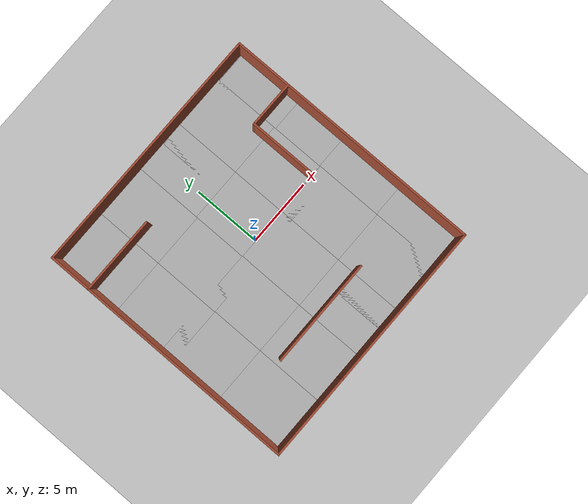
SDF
<sdf version="1.6">
 <world name="default">
  <light name="sun" type="directional">
   <pose>0 0 10 0 -0 0</pose>
   <diffuse>0.8 0.8 0.8 1</diffuse>
   <specular>0.2 0.2 0.2 1</specular>
   <attenuation>
    <range>1000</range>
    <constant>0.9</constant>
    <linear>0.01</linear>
    <quadratic>0.001</quadratic>
   </attenuation>
   <direction>-0.5 0.1 -0.9</direction>
  </light>
  <model name="ground_plane">
   <static>1</static>
   <link name="link">
    <collision name="collision">
     <geometry><plane><normal>0 0 1</normal><size>100 100</size></plane></geometry>
     <surface><friction><ode><mu>100</mu><mu2>50</mu2></ode></friction></surface>
    </collision>
    <visual name="visual">
     <cast_shadows>0</cast_shadows>
     <geometry><plane><normal>0 0 1</normal><size>100 100</size></plane></geometry>
     <material>
      <script><uri>file://media/materials/scripts/gazebo.material</uri><name>Gazebo/Grey</name></script>
     </material>
    </visual>
   </link>
  </model>
  <gravity>0 0 -9.8</gravity>
  <magnetic_field>6e-06 2.3e-05 -4.2e-05</magnetic_field>
  <atmosphere type="adiabatic"/>
  <physics name="default_physics" default="0" type="ode">
   <max_step_size>0.001</max_step_size>
   <real_time_factor>1</real_time_factor>
   <real_time_update_rate>1000</real_time_update_rate>
  </physics>
  <scene><ambient>0.4 0.4 0.4 1</ambient><background>0.7 0.7 0.7 1</background><shadows>1</shadows></scene>
  <spherical_coordinates>
   <surface_model>EARTH_WGS84</surface_model>
   <latitude_deg>0</latitude_deg>
   <longitude_deg>0</longitude_deg>
   <elevation>0</elevation>
   <heading_deg>0</heading_deg>
  </spherical_coordinates>
  <model name="big-room">
   <pose>-0.228667 -0.515141 0 0 -0 0</pose>
   <link name="Wall_0">
    <collision name="Wall_0_Collision">
     <geometry><box><size>12.25 0.15 2.5</size></box></geometry>
     <pose>0 0 1.25 0 -0 0</pose>
    </collision>
    <visual name="Wall_0_Visual">
     <pose>0 0 1.25 0 -0 0</pose>
     <geometry><box><size>12.25 0.15 2.5</size></box></geometry>
     <material>
      <script><uri>file://media/materials/scripts/gazebo.material</uri><name>Gazebo/Bricks</name></script>
      <ambient>1 1 1 1</ambient>
     </material>
     <meta><layer>0</layer></meta>
    </visual>
    <pose>3.125 -9.55 0 0 -0 0</pose>
   </link>
   <link name="Wall_1">
    <collision name="Wall_1_Collision">
     <geometry><box><size>19.25 0.15 2.5</size></box></geometry>
     <pose>0 0 1.25 0 -0 0</pose>
    </collision>
    <visual name="Wall_1_Visual">
     <pose>0 0 1.25 0 -0 0</pose>
     <geometry><box><size>19.25 0.15 2.5</size></box></geometry>
     <material>
      <script><uri>file://media/materials/scripts/gazebo.material</uri><name>Gazebo/Bricks</name></script>
      <ambient>1 1 1 1</ambient>
     </material>
     <meta><layer>0</layer></meta>
    </visual>
    <pose>9.175 0 0 0 -0 1.5708</pose>
   </link>
   <link name="Wall_10">
    <collision name="Wall_10_Collision">
     <geometry><box><size>3.5 0.15 2.5</size></box></geometry>
     <pose>0 0 1.25 0 -0 0</pose>
    </collision>
    <visual name="Wall_10_Visual">
     <pose>0 0 1.25 0 -0 0</pose>
     <geometry><box><size>3.5 0.15 2.5</size></box></geometry>
     <material>
      <script><uri>file://media/materials/scripts/gazebo.material</uri><name>Gazebo/Bricks</name></script>
      <ambient>1 1 1 1</ambient>
     </material>
     <meta><layer>0</layer></meta>
    </visual>
    <pose>7.48406 5.39757 0 0 -0 3.14159</pose>
   </link>
   <link name="Wall_11">
    <collision name="Wall_11_Collision">
     <geometry><box><size>5 0.15 2.5</size></box></geometry>
     <pose>0 0 1.25 0 -0 0</pose>
    </collision>
    <visual name="Wall_11_Visual">
     <pose>0 0 1.25 0 -0 0</pose>
     <geometry><box><size>5 0.15 2.5</size></box></geometry>
     <material>
      <script><uri>file://media/materials/scripts/gazebo.material</uri><name>Gazebo/Bricks</name></script>
      <ambient>1 1 1 1</ambient>
     </material>
     <meta><layer>0</layer></meta>
    </visual>
    <pose>5.80906 2.97257 0 0 0 -1.5708</pose>
   </link>
   <link name="Wall_2">
    <collision name="Wall_2_Collision">
     <geometry><box><size>18.5 0.15 2.5</size></box></geometry>
     <pose>0 0 1.25 0 -0 0</pose>
    </collision>
    <visual name="Wall_2_Visual">
     <pose>0 0 1.25 0 -0 0</pose>
     <geometry><box><size>18.5 0.15 2.5</size></box></geometry>
     <material>
      <script><uri>file://media/materials/scripts/gazebo.material</uri><name>Gazebo/Bricks</name></script>
      <ambient>1 1 1 1</ambient>
     </material>
     <meta><layer>0</layer></meta>
    </visual>
    <pose>0 9.55 0 0 -0 3.14159</pose>
   </link>
   <link name="Wall_3">
    <collision name="Wall_3_Collision">
     <geometry><box><size>19.25 0.15 2.5</size></box></geometry>
     <pose>0 0 1.25 0 -0 0</pose>
    </collision>
    <visual name="Wall_3_Visual">
     <pose>0 0 1.25 0 -0 0</pose>
     <geometry><box><size>19.25 0.15 2.5</size></box></geometry>
     <material>
      <script><uri>file://media/materials/scripts/gazebo.material</uri><name>Gazebo/Bricks</name></script>
      <ambient>1 1 1 1</ambient>
     </material>
     <meta><layer>0</layer></meta>
    </visual>
    <pose>-9.175 0 0 0 0 -1.5708</pose>
   </link>
   <link name="Wall_4">
    <collision name="Wall_4_Collision">
     <geometry><box><size>6.4 0.15 2.5</size></box></geometry>
     <pose>0 0 1.25 0 -0 0</pose>
    </collision>
    <visual name="Wall_4_Visual">
     <pose>0 0 1.25 0 -0 0</pose>
     <geometry><box><size>6.4 0.15 2.5</size></box></geometry>
     <material>
      <script><uri>file://media/materials/scripts/gazebo.material</uri><name>Gazebo/Bricks</name></script>
      <ambient>1 1 1 1</ambient>
     </material>
     <meta><layer>0</layer></meta>
    </visual>
    <pose>-6.05 -9.55 0 0 -0 0</pose>
   </link>
   <link name="Wall_6">
    <collision name="Wall_6_Collision">
     <geometry><box><size>5.75 0.15 2.5</size></box></geometry>
     <pose>0 0 1.25 0 -0 0</pose>
    </collision>
    <visual name="Wall_6_Visual">
     <pose>0 0 1.25 0 -0 0</pose>
     <geometry><box><size>5.75 0.15 2.5</size></box></geometry>
     <material>
      <script><uri>file://media/materials/scripts/gazebo.material</uri><name>Gazebo/Bricks</name></script>
      <ambient>1 1 1 1</ambient>
     </material>
     <meta><layer>0</layer></meta>
    </visual>
    <pose>-6.34429 6.4837 0 0 -0 0</pose>
   </link>
   <link name="Wall_8">
    <collision name="Wall_8_Collision">
     <geometry><box><size>8 0.15 2.5</size></box></geometry>
     <pose>0 0 1.25 0 -0 0</pose>
    </collision>
    <visual name="Wall_8_Visual">
     <pose>0 0 1.25 0 -0 0</pose>
     <geometry><box><size>8 0.15 2.5</size></box></geometry>
     <material>
      <script><uri>file://media/materials/scripts/gazebo.material</uri><name>Gazebo/Bricks</name></script>
      <ambient>1 1 1 1</ambient>
     </material>
     <meta><layer>0</layer></meta>
    </visual>
    <pose>-0.633394 -5.78558 0 0 -0 0</pose>
   </link>
   <static>1</static>
  </model>
  <model name="mud_box">
   <static>1</static>
   <link name="link">
    <collision name="collision"><geometry><box><size>8 10 0.2</size></box></geometry></collision>
    <visual name="visual_1">
     <pose>-2 2.5 0 0 -0 0</pose>
     <cast_shadows>0</cast_shadows>
     <geometry><box><size>4 5 0.2</size></box></geometry>
     <material>
      <script>
       <uri>model://mud_box/materials/scripts</uri>
       <uri>model://mud_box/materials/textures</uri>
       <name>vrc/mud</name>
      </script>
     </material>
    </visual>
    <visual name="visual_2">
     <pose>2 2.5 0 0 -0 0</pose>
     <cast_shadows>0</cast_shadows>
     <geometry><box><size>4 5 0.2</size></box></geometry>
     <material>
      <script>
       <uri>model://mud_box/materials/scripts</uri>
       <uri>model://mud_box/materials/textures</uri>
       <name>vrc/mud</name>
      </script>
     </material>
    </visual>
    <visual name="visual_3">
     <pose>2 -2.5 0 0 -0 0</pose>
     <cast_shadows>0</cast_shadows>
     <geometry><box><size>4 5 0.2</size></box></geometry>
     <material>
      <script>
       <uri>model://mud_box/materials/scripts</uri>
       <uri>model://mud_box/materials/textures</uri>
       <name>vrc/mud</name>
      </script>
     </material>
    </visual>
    <visual name="visual_4">
     <pose>-2 -2.5 0 0 -0 0</pose>
     <cast_shadows>0</cast_shadows>
     <geometry><box><size>4 5 0.2</size></box></geometry>
     <material>
      <script>
       <uri>model://mud_box/materials/scripts</uri>
       <uri>model://mud_box/materials/textures</uri>
       <name>vrc/mud</name>
      </script>
     </material>
    </visual>
   </link>
   <pose>-5.32326 -5.01558 0 0 -0 0</pose>
  </model>
  <model name="mud_box_0">
   <static>1</static>
   <link name="link">
    <collision name="collision"><geometry><box><size>8 10 0.2</size></box></geometry></collision>
    <visual name="visual_1">
     <pose>-2 2.5 0 0 -0 0</pose>
     <cast_shadows>0</cast_shadows>
     <geometry><box><size>4 5 0.2</size></box></geometry>
     <material>
      <script>
       <uri>model://mud_box/materials/scripts</uri>
       <uri>model://mud_box/materials/textures</uri>
       <name>vrc/mud</name>
      </script>
     </material>
    </visual>
    <visual name="visual_2">
     <pose>2 2.5 0 0 -0 0</pose>
     <cast_shadows>0</cast_shadows>
     <geometry><box><size>4 5 0.2</size></box></geometry>
     <material>
      <script>
       <uri>model://mud_box/materials/scripts</uri>
       <uri>model://mud_box/materials/textures</uri>
       <name>vrc/mud</name>
      </script>
     </material>
    </visual>
    <visual name="visual_3">
     <pose>2 -2.5 0 0 -0 0</pose>
     <cast_shadows>0</cast_shadows>
     <geometry><box><size>4 5 0.2</size></box></geometry>
     <material>
      <script>
       <uri>model://mud_box/materials/scripts</uri>
       <uri>model://mud_box/materials/textures</uri>
       <name>vrc/mud</name>
      </script>
     </material>
    </visual>
    <visual name="visual_4">
     <pose>-2 -2.5 0 0 -0 0</pose>
     <cast_shadows>0</cast_shadows>
     <geometry><box><size>4 5 0.2</size></box></geometry>
     <material>
      <script>
       <uri>model://mud_box/materials/scripts</uri>
       <uri>model://mud_box/materials/textures</uri>
       <name>vrc/mud</name>
      </script>
     </material>
    </visual>
   </link>
   <pose>-5.35328 3.94469 0 0 -0 0</pose>
  </model>
  <model name="mud_box_1">
   <static>1</static>
   <link name="link">
    <collision name="collision"><geometry><box><size>8 10 0.2</size></box></geometry></collision>
    <visual name="visual_1">
     <pose>-2 2.5 0 0 -0 0</pose>
     <cast_shadows>0</cast_shadows>
     <geometry><box><size>4 5 0.2</size></box></geometry>
     <material>
      <script>
       <uri>model://mud_box/materials/scripts</uri>
       <uri>model://mud_box/materials/textures</uri>
       <name>vrc/mud</name>
      </script>
     </material>
    </visual>
    <visual name="visual_2">
     <pose>2 2.5 0 0 -0 0</pose>
     <cast_shadows>0</cast_shadows>
     <geometry><box><size>4 5 0.2</size></box></geometry>
     <material>
      <script>
       <uri>model://mud_box/materials/scripts</uri>
       <uri>model://mud_box/materials/textures</uri>
       <name>vrc/mud</name>
      </script>
     </material>
    </visual>
    <visual name="visual_3">
     <pose>2 -2.5 0 0 -0 0</pose>
     <cast_shadows>0</cast_shadows>
     <geometry><box><size>4 5 0.2</size></box></geometry>
     <material>
      <script>
       <uri>model://mud_box/materials/scripts</uri>
       <uri>model://mud_box/materials/textures</uri>
       <name>vrc/mud</name>
      </script>
     </material>
    </visual>
    <visual name="visual_4">
     <pose>-2 -2.5 0 0 -0 0</pose>
     <cast_shadows>0</cast_shadows>
     <geometry><box><size>4 5 0.2</size></box></geometry>
     <material>
      <script>
       <uri>model://mud_box/materials/scripts</uri>
       <uri>model://mud_box/materials/textures</uri>
       <name>vrc/mud</name>
      </script>
     </material>
    </visual>
   </link>
   <pose>2.6391 4.03124 0 0 -0 0</pose>
  </model>
  <model name="mud_box_2">
   <static>1</static>
   <link name="link">
    <collision name="collision"><geometry><box><size>8 10 0.2</size></box></geometry></collision>
    <visual name="visual_1">
     <pose>-2 2.5 0 0 -0 0</pose>
     <cast_shadows>0</cast_shadows>
     <geometry><box><size>4 5 0.2</size></box></geometry>
     <material>
      <script>
       <uri>model://mud_box/materials/scripts</uri>
       <uri>model://mud_box/materials/textures</uri>
       <name>vrc/mud</name>
      </script>
     </material>
    </visual>
    <visual name="visual_2">
     <pose>2 2.5 0 0 -0 0</pose>
     <cast_shadows>0</cast_shadows>
     <geometry><box><size>4 5 0.2</size></box></geometry>
     <material>
      <script>
       <uri>model://mud_box/materials/scripts</uri>
       <uri>model://mud_box/materials/textures</uri>
       <name>vrc/mud</name>
      </script>
     </material>
    </visual>
    <visual name="visual_3">
     <pose>2 -2.5 0 0 -0 0</pose>
     <cast_shadows>0</cast_shadows>
     <geometry><box><size>4 5 0.2</size></box></geometry>
     <material>
      <script>
       <uri>model://mud_box/materials/scripts</uri>
       <uri>model://mud_box/materials/textures</uri>
       <name>vrc/mud</name>
      </script>
     </material>
    </visual>
    <visual name="visual_4">
     <pose>-2 -2.5 0 0 -0 0</pose>
     <cast_shadows>0</cast_shadows>
     <geometry><box><size>4 5 0.2</size></box></geometry>
     <material>
      <script>
       <uri>model://mud_box/materials/scripts</uri>
       <uri>model://mud_box/materials/textures</uri>
       <name>vrc/mud</name>
      </script>
     </material>
    </visual>
   </link>
   <pose>2.65907 -5.03541 0 0 -0 0</pose>
  </model>
  <model name="mud_box_3">
   <static>1</static>
   <link name="link">
    <collision name="collision"><geometry><box><size>8 10 0.2</size></box></geometry></collision>
    <visual name="visual_1">
     <pose>-2 2.5 0 0 -0 0</pose>
     <cast_shadows>0</cast_shadows>
     <geometry><box><size>4 5 0.2</size></box></geometry>
     <material>
      <script>
       <uri>model://mud_box/materials/scripts</uri>
       <uri>model://mud_box/materials/textures</uri>
       <name>vrc/mud</name>
      </script>
     </material>
    </visual>
    <visual name="visual_2">
     <pose>2 2.5 0 0 -0 0</pose>
     <cast_shadows>0</cast_shadows>
     <geometry><box><size>4 5 0.2</size></box></geometry>
     <material>
      <script>
       <uri>model://mud_box/materials/scripts</uri>
       <uri>model://mud_box/materials/textures</uri>
       <name>vrc/mud</name>
      </script>
     </material>
    </visual>
    <visual name="visual_3">
     <pose>2 -2.5 0 0 -0 0</pose>
     <cast_shadows>0</cast_shadows>
     <geometry><box><size>4 5 0.2</size></box></geometry>
     <material>
      <script>
       <uri>model://mud_box/materials/scripts</uri>
       <uri>model://mud_box/materials/textures</uri>
       <name>vrc/mud</name>
      </script>
     </material>
    </visual>
    <visual name="visual_4">
     <pose>-2 -2.5 0 0 -0 0</pose>
     <cast_shadows>0</cast_shadows>
     <geometry><box><size>4 5 0.2</size></box></geometry>
     <material>
      <script>
       <uri>model://mud_box/materials/scripts</uri>
       <uri>model://mud_box/materials/textures</uri>
       <name>vrc/mud</name>
      </script>
     </material>
    </visual>
   </link>
   <pose>4.91987 3.91128 0 0 -0 0</pose>
  </model>
  <model name="mud_box_4">
   <static>1</static>
   <link name="link">
    <collision name="collision"><geometry><box><size>8 10 0.2</size></box></geometry></collision>
    <visual name="visual_1">
     <pose>-2 2.5 0 0 -0 0</pose>
     <cast_shadows>0</cast_shadows>
     <geometry><box><size>4 5 0.2</size></box></geometry>
     <material>
      <script>
       <uri>model://mud_box/materials/scripts</uri>
       <uri>model://mud_box/materials/textures</uri>
       <name>vrc/mud</name>
      </script>
     </material>
    </visual>
    <visual name="visual_2">
     <pose>2 2.5 0 0 -0 0</pose>
     <cast_shadows>0</cast_shadows>
     <geometry><box><size>4 5 0.2</size></box></geometry>
     <material>
      <script>
       <uri>model://mud_box/materials/scripts</uri>
       <uri>model://mud_box/materials/textures</uri>
       <name>vrc/mud</name>
      </script>
     </material>
    </visual>
    <visual name="visual_3">
     <pose>2 -2.5 0 0 -0 0</pose>
     <cast_shadows>0</cast_shadows>
     <geometry><box><size>4 5 0.2</size></box></geometry>
     <material>
      <script>
       <uri>model://mud_box/materials/scripts</uri>
       <uri>model://mud_box/materials/textures</uri>
       <name>vrc/mud</name>
      </script>
     </material>
    </visual>
    <visual name="visual_4">
     <pose>-2 -2.5 0 0 -0 0</pose>
     <cast_shadows>0</cast_shadows>
     <geometry><box><size>4 5 0.2</size></box></geometry>
     <material>
      <script>
       <uri>model://mud_box/materials/scripts</uri>
       <uri>model://mud_box/materials/textures</uri>
       <name>vrc/mud</name>
      </script>
     </material>
    </visual>
   </link>
   <pose>4.92225 -4.98366 0 0 -0 0</pose>
  </model>
 </world>
</sdf>
